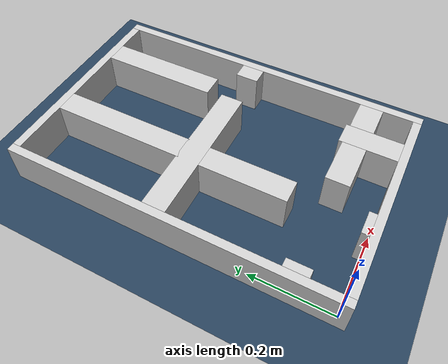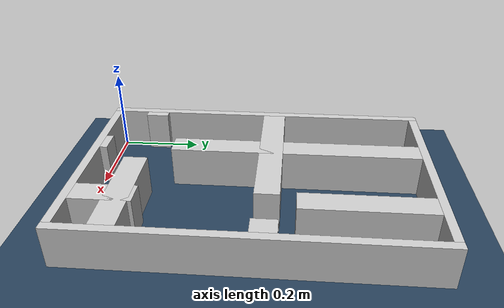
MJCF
<?xml version="1.0" ?>
<mujoco model="generated_real_template">
  <compiler angle="degree"/>
  <option timestep="0.002" integrator="implicitfast" iterations="100" cone="elliptic"/>
  <default>
    <geom density="1"/>
  </default>
  <asset>
    <texture builtin="gradient" height="3072" rgb1="0.3 0.5 0.7" rgb2="0 0 0" type="skybox" width="512"/>
    <texture builtin="checker" height="300" mark="edge" markrgb="0.8 0.8 0.8" name="groundplane" rgb1="0.2 0.3 0.4" rgb2="0.1 0.2 0.3" type="2d" width="300"/>
    <material name="groundplane" reflectance="0.2" texrepeat="5 5" texture="groundplane" texuniform="true"/>
  </asset>
  <worldbody>
    <light dir="0 0 -1" directional="true" pos="0 0 1.5"/>
    <geom name="floor" type="plane" condim="4" friction="0.5 0.005 0.001" material="groundplane" size="0 0 0.05"/>
    <body name="walls">
      <geom name="wall_boundary_left" type="box" condim="4" friction="1.0 0.005 0.0001" rgba="0.8 0.8 0.8 1" pos="-0.010000 0.387500 0.050000" euler="0 0 0.000000" size="0.010000 0.407500 0.050000"/>
      <geom name="wall_boundary_right" type="box" condim="4" friction="1.0 0.005 0.0001" rgba="0.8 0.8 0.8 1" pos="0.500000 0.387500 0.050000" euler="0 0 0.000000" size="0.010000 0.407500 0.050000"/>
      <geom name="wall_boundary_bottom" type="box" condim="4" friction="1.0 0.005 0.0001" rgba="0.8 0.8 0.8 1" pos="0.245000 -0.010000 0.050000" euler="0 0 0.000000" size="0.245000 0.010000 0.050000"/>
      <geom name="wall_boundary_top" type="box" condim="4" friction="1.0 0.005 0.0001" rgba="0.8 0.8 0.8 1" pos="0.245000 0.785000 0.050000" euler="0 0 0.000000" size="0.245000 0.010000 0.050000"/>
      <geom name="wall_inner_1_1" type="box" condim="4" friction="1.0 0.005 0.0001" rgba="0.8 0.8 0.8 1" pos="0.381193 0.069179 0.050000" euler="0 0 90.000000" size="0.069179 0.028500 0.050000"/>
      <geom name="wall_inner_1_2" type="box" condim="4" friction="1.0 0.005 0.0001" rgba="0.8 0.8 0.8 1" pos="0.381193 0.628075 0.050000" euler="0 0 90.000000" size="0.146925 0.028500 0.050000"/>
      <geom name="wall_inner_2_1" type="box" condim="4" friction="1.0 0.005 0.0001" rgba="0.8 0.8 0.8 1" pos="0.009939 0.100893 0.050000" euler="0 0 0.000000" size="0.009939 0.028500 0.050000"/>
      <geom name="wall_inner_2_2" type="box" condim="4" friction="1.0 0.005 0.0001" rgba="0.8 0.8 0.8 1" pos="0.363479 0.100893 0.050000" euler="0 0 0.000000" size="0.126521 0.028500 0.050000"/>
      <geom name="wall_inner_3_1" type="box" condim="4" friction="1.0 0.005 0.0001" rgba="0.8 0.8 0.8 1" pos="0.181964 0.417881 0.050000" euler="0 0 0.000000" size="0.181964 0.028500 0.050000"/>
      <geom name="wall_inner_3_2" type="box" condim="4" friction="1.0 0.005 0.0001" rgba="0.8 0.8 0.8 1" pos="0.468837 0.417881 0.050000" euler="0 0 0.000000" size="0.021163 0.028500 0.050000"/>
      <geom name="wall_inner_4_1" type="box" condim="4" friction="1.0 0.005 0.0001" rgba="0.8 0.8 0.8 1" pos="0.168182 0.009094 0.050000" euler="0 0 90.000000" size="0.009094 0.028500 0.050000"/>
      <geom name="wall_inner_4_2" type="box" condim="4" friction="1.0 0.005 0.0001" rgba="0.8 0.8 0.8 1" pos="0.168182 0.475942 0.050000" euler="0 0 90.000000" size="0.299058 0.028500 0.050000"/>
    </body>
  </worldbody>
</mujoco>
